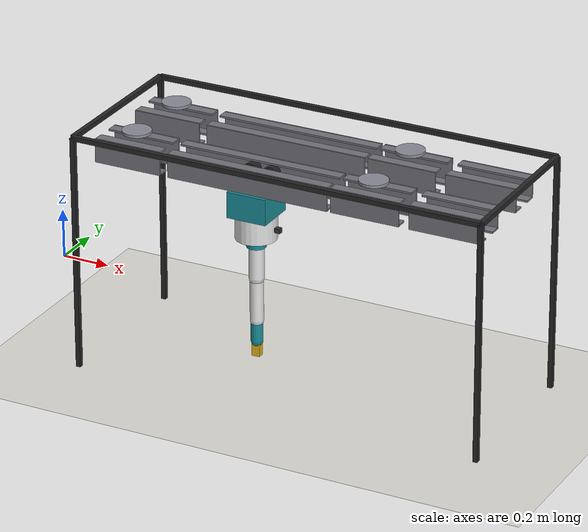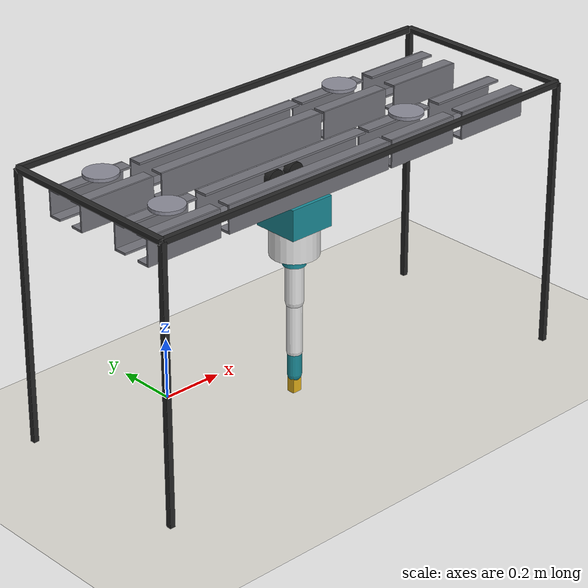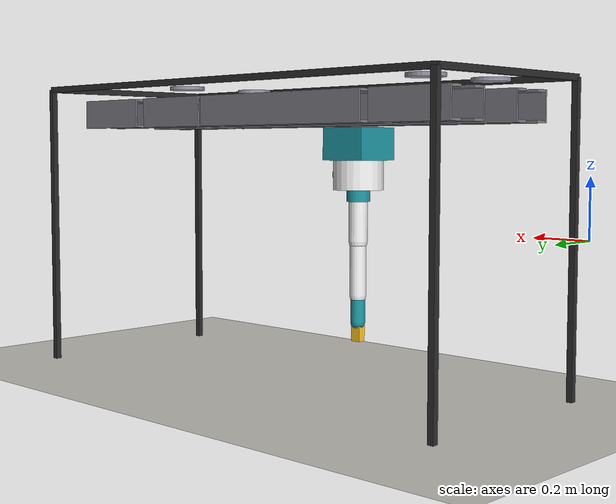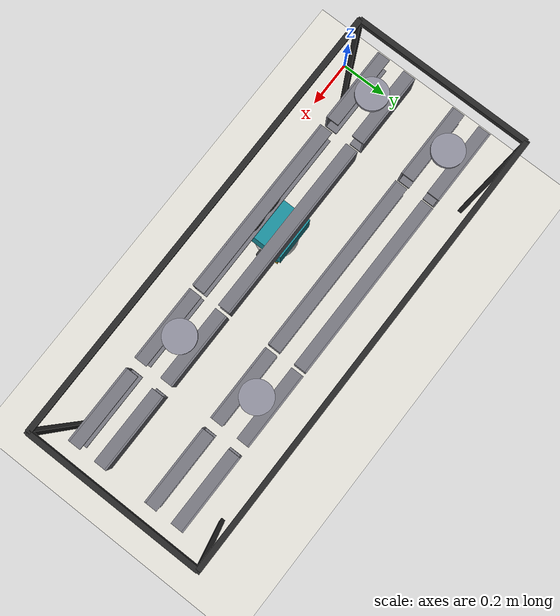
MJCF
<mujoco model="locobot_grid_v1">
  <!-- Dimensions extracted from Full_Grid.glb (meters):
       lanes y=0.231/0.551, stations x=0.211/1.251, segment 292mm, gauge 80mm,
       fixed rails x 0.391..1.091, bot 247x228mm, charging bay x>1.40 -->

  <compiler angle="radian"/>

  <option timestep="0.002" gravity="0 0 -9.81"/>
  <visual><headlight ambient="0.45 0.45 0.45" diffuse="0.55 0.55 0.55"/></visual>

  <default>
    <joint damping="0.05"/>
    <position kp="8" forcerange="-1.47 1.47"/>
    <default class="frame">
      <geom contype="0" conaffinity="0" rgba="0.15 0.15 0.15 1"/>
    </default>
    <default class="cweb">
      <geom contype="0" conaffinity="0" type="box" rgba="0.45 0.45 0.48 1"/>
    </default>
  </default>

  <worldbody>
    <geom name="floor" type="plane" size="2 2 0.1" pos="0.88 0.35 -0.5" rgba="0.87 0.86 0.83 1"/>

    <!-- frame rails (visual only): the four fixed lane rails + frame edges -->
    <!-- fixed lane rails: real C-section 100x50, web 6.4, flange 7.9, clear 147.2 -->
    <geom class="cweb" size="0.35 0.0032 0.05"   pos="0.741 0.3078 0.41"/>
    <geom class="cweb" size="0.35 0.0218 0.00395" pos="0.741 0.2828 0.4560"/>
    <geom class="cweb" size="0.35 0.0218 0.00395" pos="0.741 0.2828 0.3640"/>
    <geom class="cweb" size="0.35 0.0032 0.05"   pos="0.741 0.1542 0.41"/>
    <geom class="cweb" size="0.35 0.0218 0.00395" pos="0.741 0.1792 0.4560"/>
    <geom class="cweb" size="0.35 0.0218 0.00395" pos="0.741 0.1792 0.3640"/>
    <geom class="cweb" size="0.35 0.0032 0.05"   pos="0.741 0.6278 0.41"/>
    <geom class="cweb" size="0.35 0.0218 0.00395" pos="0.741 0.6028 0.4560"/>
    <geom class="cweb" size="0.35 0.0218 0.00395" pos="0.741 0.6028 0.3640"/>
    <geom class="cweb" size="0.35 0.0032 0.05"   pos="0.741 0.4742 0.41"/>
    <geom class="cweb" size="0.35 0.0218 0.00395" pos="0.741 0.4992 0.4560"/>
    <geom class="cweb" size="0.35 0.0218 0.00395" pos="0.741 0.4992 0.3640"/>
    <!-- charging bay rails, BOTH lanes continue into the bay -->
    <geom class="cweb" size="0.15 0.0032 0.05"   pos="1.59 0.6278 0.41"/>
    <geom class="cweb" size="0.15 0.0218 0.00395" pos="1.59 0.6028 0.456"/>
    <geom class="cweb" size="0.15 0.0218 0.00395" pos="1.59 0.6028 0.364"/>
    <geom class="cweb" size="0.15 0.0032 0.05"   pos="1.59 0.4742 0.41"/>
    <geom class="cweb" size="0.15 0.0218 0.00395" pos="1.59 0.4992 0.456"/>
    <geom class="cweb" size="0.15 0.0218 0.00395" pos="1.59 0.4992 0.364"/>

    <geom class="cweb" size="0.15 0.0032 0.05"   pos="1.59 0.3078 0.41"/>
    <geom class="cweb" size="0.15 0.0218 0.00395" pos="1.59 0.2828 0.4560"/>
    <geom class="cweb" size="0.15 0.0218 0.00395" pos="1.59 0.2828 0.3640"/>
    <geom class="cweb" size="0.15 0.0032 0.05"   pos="1.59 0.1542 0.41"/>
    <geom class="cweb" size="0.15 0.0218 0.00395" pos="1.59 0.1792 0.4560"/>
    <geom class="cweb" size="0.15 0.0218 0.00395" pos="1.59 0.1792 0.3640"/>
    <!-- frame outline -->
    <geom class="frame" type="box" size="0.88 0.01 0.01" pos="0.911 0.041 0.5"/>
    <geom class="frame" type="box" size="0.88 0.01 0.01" pos="0.911 0.741 0.5"/>
    <geom class="frame" type="box" size="0.01 0.35 0.01" pos="0.031 0.391 0.5"/>
    <geom class="frame" type="box" size="0.01 0.35 0.01" pos="1.791 0.391 0.5"/>
    <geom class="frame" type="box" size="0.01 0.01 0.5" pos="0.031 0.041 0.0"/>
    <geom class="frame" type="box" size="0.01 0.01 0.5" pos="0.031 0.741 0.0"/>
    <geom class="frame" type="box" size="0.01 0.01 0.5" pos="1.791 0.041 0.0"/>
    <geom class="frame" type="box" size="0.01 0.01 0.5" pos="1.791 0.741 0.0"/>

    <!-- ============ TURNTABLES: hinge about Z, rail segment rides on top ============ -->
    <!-- left station x=0.211: A1 (lane A) + B1 (lane B), shaft-coupled via equality -->
    <body name="tt_A1" pos="0.211 0.231 0.492">
      <joint name="tt_A1_rot" type="hinge" axis="0 0 1" damping="8"/>
      <geom type="cylinder" size="0.060 0.006" contype="0" conaffinity="0" rgba="0.55 0.55 0.6 1"/>
      <geom class="cweb" size="0.146 0.0032 0.05"    pos="0 0.0768 -0.082"/>
      <geom class="cweb" size="0.146 0.0218 0.00395" pos="0 0.0518 -0.036"/>
      <geom class="cweb" size="0.146 0.0218 0.00395" pos="0 0.0518 -0.128"/>
      <geom class="cweb" size="0.146 0.0032 0.05"    pos="0 -0.0768 -0.082"/>
      <geom class="cweb" size="0.146 0.0218 0.00395" pos="0 -0.0518 -0.036"/>
      <geom class="cweb" size="0.146 0.0218 0.00395" pos="0 -0.0518 -0.128"/>
    </body>
    <body name="tt_B1" pos="0.211 0.551 0.492">
      <joint name="tt_B1_rot" type="hinge" axis="0 0 1" damping="8"/>
      <geom type="cylinder" size="0.060 0.006" contype="0" conaffinity="0" rgba="0.55 0.55 0.6 1"/>
      <geom class="cweb" size="0.146 0.0032 0.05"    pos="0 0.0768 -0.082"/>
      <geom class="cweb" size="0.146 0.0218 0.00395" pos="0 0.0518 -0.036"/>
      <geom class="cweb" size="0.146 0.0218 0.00395" pos="0 0.0518 -0.128"/>
      <geom class="cweb" size="0.146 0.0032 0.05"    pos="0 -0.0768 -0.082"/>
      <geom class="cweb" size="0.146 0.0218 0.00395" pos="0 -0.0518 -0.036"/>
      <geom class="cweb" size="0.146 0.0218 0.00395" pos="0 -0.0518 -0.128"/>
    </body>
    <!-- right station x=1.251: A2 + B2 -->
    <body name="tt_A2" pos="1.251 0.231 0.492">
      <joint name="tt_A2_rot" type="hinge" axis="0 0 1" damping="8"/>
      <geom type="cylinder" size="0.060 0.006" contype="0" conaffinity="0" rgba="0.55 0.55 0.6 1"/>
      <geom class="cweb" size="0.146 0.0032 0.05"    pos="0 0.0768 -0.082"/>
      <geom class="cweb" size="0.146 0.0218 0.00395" pos="0 0.0518 -0.036"/>
      <geom class="cweb" size="0.146 0.0218 0.00395" pos="0 0.0518 -0.128"/>
      <geom class="cweb" size="0.146 0.0032 0.05"    pos="0 -0.0768 -0.082"/>
      <geom class="cweb" size="0.146 0.0218 0.00395" pos="0 -0.0518 -0.036"/>
      <geom class="cweb" size="0.146 0.0218 0.00395" pos="0 -0.0518 -0.128"/>
    </body>
    <body name="tt_B2" pos="1.251 0.551 0.492">
      <joint name="tt_B2_rot" type="hinge" axis="0 0 1" damping="8"/>
      <geom type="cylinder" size="0.060 0.006" contype="0" conaffinity="0" rgba="0.55 0.55 0.6 1"/>
      <geom class="cweb" size="0.146 0.0032 0.05"    pos="0 0.0768 -0.082"/>
      <geom class="cweb" size="0.146 0.0218 0.00395" pos="0 0.0518 -0.036"/>
      <geom class="cweb" size="0.146 0.0218 0.00395" pos="0 0.0518 -0.128"/>
      <geom class="cweb" size="0.146 0.0032 0.05"    pos="0 -0.0768 -0.082"/>
      <geom class="cweb" size="0.146 0.0218 0.00395" pos="0 -0.0518 -0.036"/>
      <geom class="cweb" size="0.146 0.0218 0.00395" pos="0 -0.0518 -0.128"/>
    </body>

    <body name="bot" pos="0.741 0.231 0.41">
      <joint name="bot_x"   type="slide" axis="1 0 0" range="-0.681 0.959" damping="2"/>
      <joint name="bot_y"   type="slide" axis="0 1 0" range="-0.051 0.329" damping="2"/>
      <joint name="bot_yaw" type="hinge" axis="0 0 1" range="-0.1 1.67" damping="1"/>
      <!-- four wheels riding inside the C-channels (axle plane = body origin, z=0.41) -->
      <geom type="cylinder" size="0.0325 0.014" zaxis="0 1 0" pos=" 0.042  0.051 0" mass="0.05" rgba="0.12 0.12 0.12 1"/>
      <geom type="cylinder" size="0.0325 0.014" zaxis="0 1 0" pos=" 0.042 -0.051 0" mass="0.05" rgba="0.12 0.12 0.12 1"/>
      <geom type="cylinder" size="0.0325 0.014" zaxis="0 1 0" pos="-0.042  0.051 0" mass="0.05" rgba="0.12 0.12 0.12 1"/>
      <geom type="cylinder" size="0.0325 0.014" zaxis="0 1 0" pos="-0.042 -0.051 0" mass="0.05" rgba="0.12 0.12 0.12 1"/>
      <!-- chassis / electronics box, top clears the channel undersides -->
      <geom name="chassis" type="box" size="0.085 0.085 0.055" pos="0 0 -0.11" mass="1.2" rgba="0.1 0.55 0.6 1"/>
      <!-- yaw stage housing, O170 x 100 -->
      <geom type="cylinder" size="0.085 0.05" pos="0 0 -0.215" mass="0.3" rgba="0.9 0.9 0.9 1"/>
      <!-- down-looking USB camera on the stage side (drawing: 34.65 offset, bot-fixed).
           MuJoCo cameras look along their -Z: identity orientation = straight down. -->
      <geom type="box" size="0.012 0.010 0.010" pos="0.097 0 -0.215" mass="0.02" rgba="0.2 0.2 0.2 1"/>
      <camera name="down_cam" pos="0.097 0 -0.228" fovy="55"/>

      <body name="arm_base" pos="0 0 -0.265">
        <joint name="j1_yaw" type="hinge" axis="0 0 1" range="-3.1 3.1"/>
        <geom type="cylinder" size="0.04 0.0196" pos="0 0 -0.0196" mass="0.09" rgba="0.1 0.55 0.6 1"/>
        <body name="upper_arm" pos="0 0 -0.0391">
          <joint name="j2_shoulder" type="hinge" axis="0 1 0" range="-1.9 1.9"/>
          <geom type="capsule" fromto="0 0 0 0 0 -0.1357" size="0.032" mass="0.12" rgba="0.9 0.9 0.9 1"/>
          <body name="forearm" pos="0 0 -0.1357">
            <joint name="j3_elbow" type="hinge" axis="0 1 0" range="-2.4 2.4"/>
            <geom type="capsule" fromto="0 0 0 0 0 -0.1861" size="0.028" mass="0.12" rgba="0.9 0.9 0.9 1"/>
            <body name="wrist" pos="0 0 -0.1861">
              <joint name="j4_wrist_pitch" type="hinge" axis="0 1 0" range="-1.9 1.9"/>
              <geom type="capsule" fromto="0 0 0 0 0 -0.09" size="0.025" mass="0.09" rgba="0.1 0.55 0.6 1"/>
              <body name="gripper" pos="0 0 -0.09">
                <joint name="j5_wrist_roll" type="hinge" axis="0 0 1" range="-3.1 3.1"/>
                <geom type="box" size="0.018 0.014 0.0324" pos="0 0 -0.0324" mass="0.09" rgba="0.9 0.7 0.1 1"/>
              </body>
            </body>
          </body>
        </body>
      </body>
    </body>
  </worldbody>

  <equality>
    <!-- the shared drive shaft at each station: both turntables rotate together -->
    <joint joint1="tt_A1_rot" joint2="tt_B1_rot" polycoef="0 1 0 0 0"/>
    <joint joint1="tt_A2_rot" joint2="tt_B2_rot" polycoef="0 1 0 0 0"/>
  </equality>

  <actuator>
    <!-- bot drive: same N20, direction resolved by which axis it's traveling -->
    <velocity name="drive_x" joint="bot_x" kv="40" ctrlrange="-0.13 0.13" forcerange="-8 8"/>
    <velocity name="drive_y" joint="bot_y" kv="40" ctrlrange="-0.13 0.13" forcerange="-8 8"/>
    <!-- bot yaw follows the turntable during rotation (soft lock behavior) -->
    <position name="yaw_hold" joint="bot_yaw" kp="20" forcerange="-3 3" ctrlrange="-0.1 1.67"/>
    <!-- one worm-geared motor per station drives the coupled pair; worm = stiff, not backdrivable -->
    <position name="tt_left"  joint="tt_A1_rot" kp="60" forcerange="-20 20" ctrlrange="0 1.5708"/>
    <position name="tt_right" joint="tt_A2_rot" kp="60" forcerange="-20 20" ctrlrange="0 1.5708"/>
    <!-- arm -->
    <position name="a1" joint="j1_yaw" ctrlrange="-3.1 3.1"/>
    <position name="a2" joint="j2_shoulder" ctrlrange="-1.9 1.9"/>
    <position name="a3" joint="j3_elbow" ctrlrange="-2.4 2.4"/>
    <position name="a4" joint="j4_wrist_pitch" ctrlrange="-1.9 1.9"/>
    <position name="a5" joint="j5_wrist_roll" ctrlrange="-3.1 3.1"/>
  </actuator>

  <sensor>
    <jointpos name="bot_x_pos" joint="bot_x"/>
    <jointpos name="bot_y_pos" joint="bot_y"/>
    <jointpos name="bot_yaw_pos" joint="bot_yaw"/>
    <jointpos name="tt_left_pos" joint="tt_A1_rot"/>
    <jointpos name="tt_right_pos" joint="tt_A2_rot"/>
  </sensor>
</mujoco>
